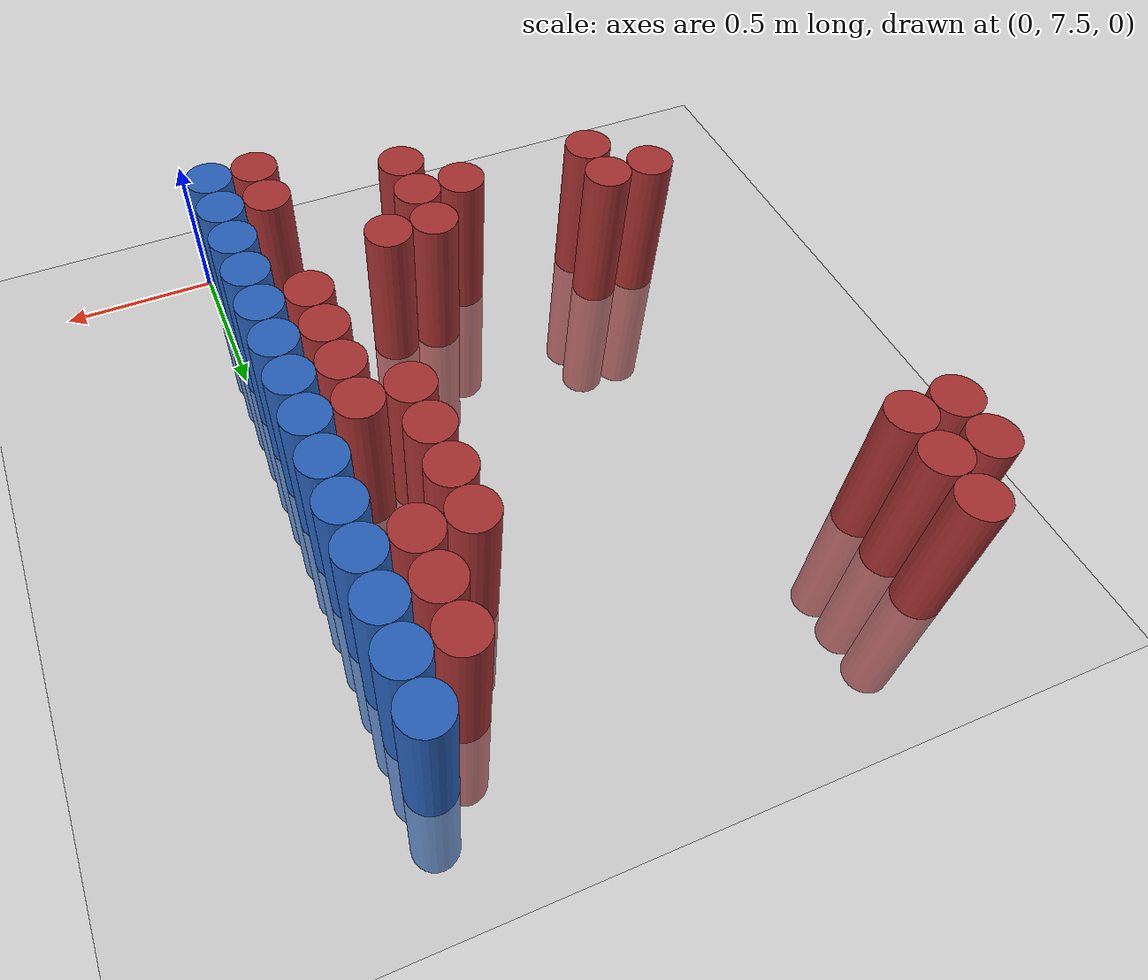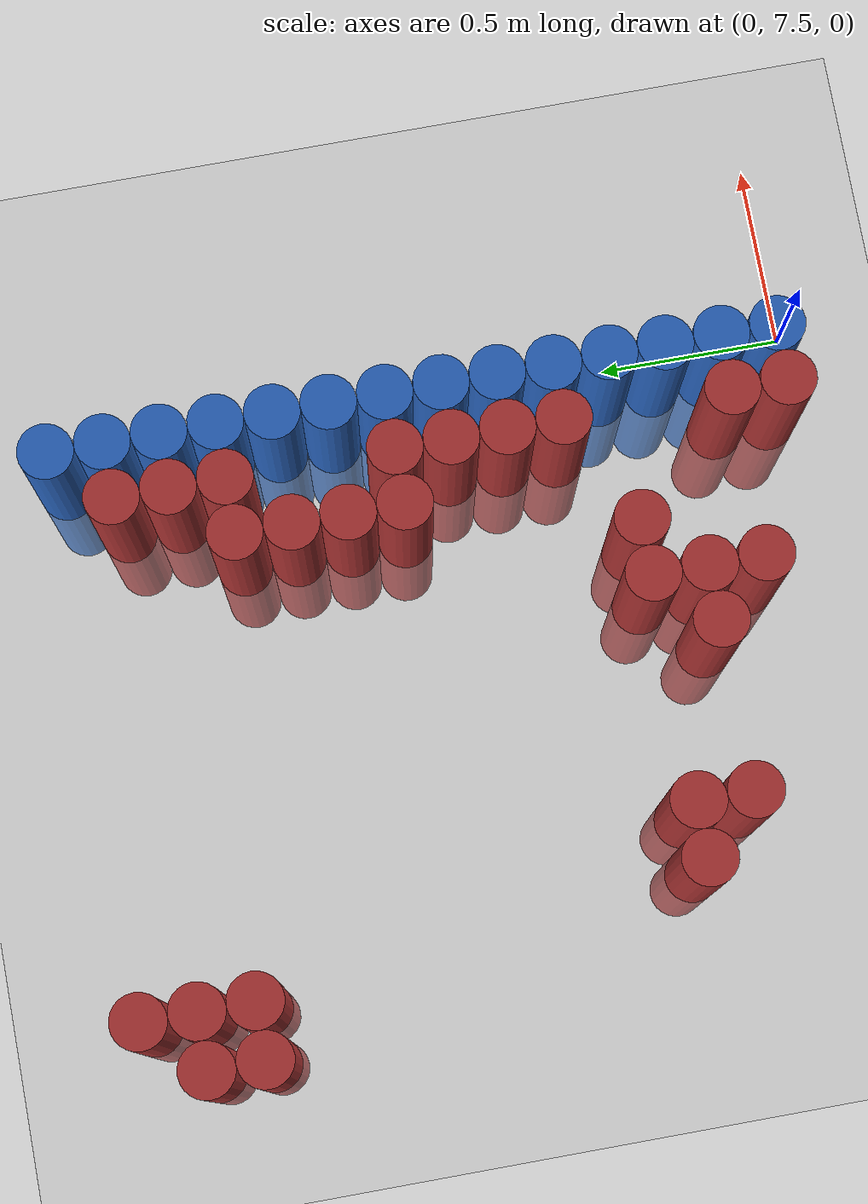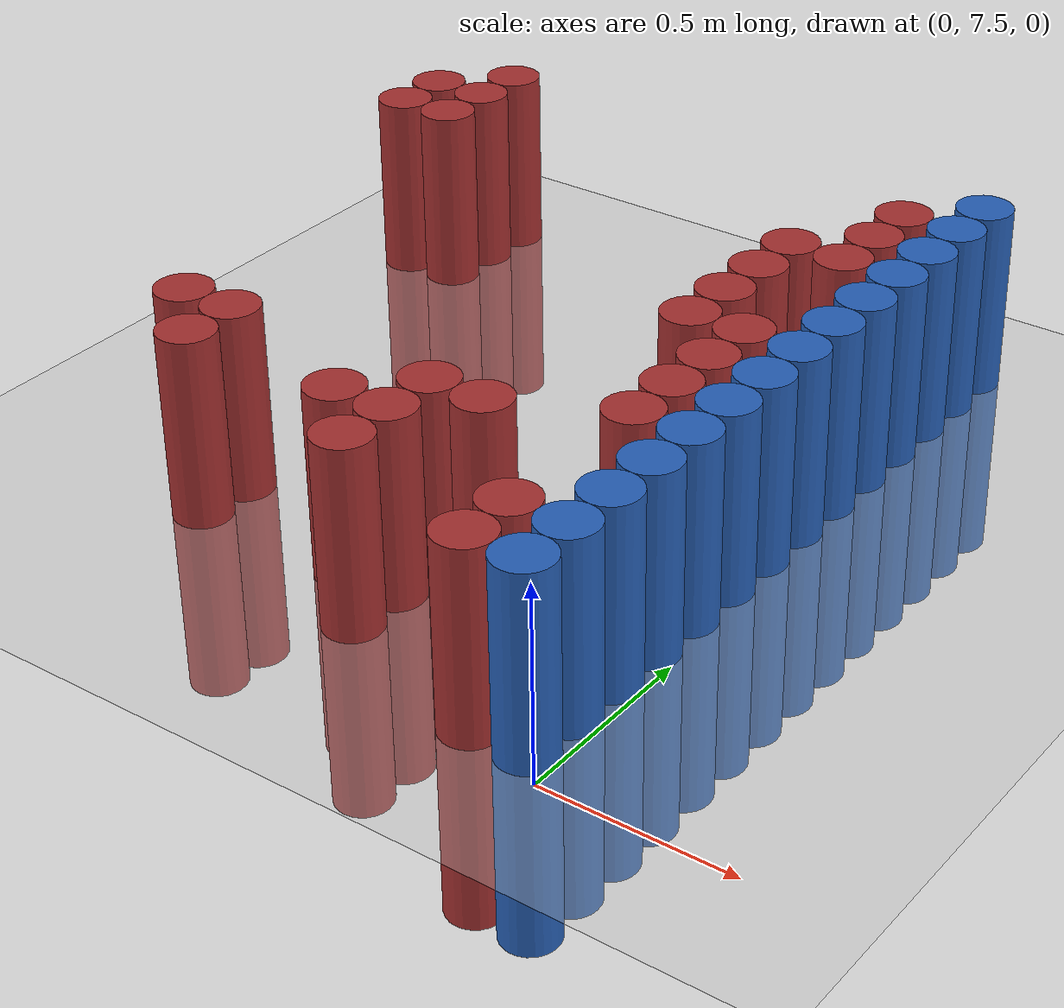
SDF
<sdf version="1.6">
 <world name="default">
  <model name="ground_plane">
   <static>1</static>
   <link name="link">
    <collision name="collision">
     <geometry><plane><normal>0 0 1</normal><size>100 100</size></plane></geometry>
     <surface><friction><ode><mu>100</mu><mu2>50</mu2></ode></friction></surface>
    </collision>
    <visual name="visual">
     <cast_shadows>0</cast_shadows>
     <geometry><plane><normal>0 0 1</normal><size>100 100</size></plane></geometry>
     <material>
      <script><uri>file://media/materials/scripts/gazebo.material</uri><name>Gazebo/Grey</name></script>
     </material>
    </visual>
   </link>
  </model>
  <model name="unit_cylinder_226">
   <static>1</static>
   <pose>-1.725000 9.225000 0.000000 0.000000 0.000000 0.000000</pose>
   <link name="link">
    <inertial>
     <mass>1</mass>
     <inertia><ixx>0.145833</ixx><ixy>0</ixy><ixz>0</ixz><iyy>0.145833</iyy><iyz>0</iyz><izz>0.125</izz></inertia>
    </inertial>
    <collision name="collision">
     <geometry><cylinder><radius>0.075000</radius><length>1</length></cylinder></geometry>
    </collision>
    <visual name="visual">
     <geometry><cylinder><radius>0.075000</radius><length>1</length></cylinder></geometry>
     <material>
      <ambient>0.648000 0.192000 0.192000 1</ambient>
      <diffuse>0.648000 0.192000 0.192000 1</diffuse>
     </material>
     <material>
      <script><name>Gazebo/Grey</name><uri>file://media/materials/scripts/gazebo.material</uri></script>
     </material>
    </visual>
    <sensor name="sensor_contact" type="contact"><contact><collision>collision</collision></contact></sensor>
   </link>
   <plugin filename="gz-sim-touchplugin-system" name="gz::sim::systems::TouchPlugin">
    <target>robot</target>
    <namespace>robot</namespace>
    <time>0.001</time>
    <enabled>true</enabled>
   </plugin>
  </model>
  <model name="unit_cylinder_227">
   <static>1</static>
   <pose>-1.725000 9.375000 0.000000 0.000000 0.000000 0.000000</pose>
   <link name="link">
    <inertial>
     <mass>1</mass>
     <inertia><ixx>0.145833</ixx><ixy>0</ixy><ixz>0</ixz><iyy>0.145833</iyy><iyz>0</iyz><izz>0.125</izz></inertia>
    </inertial>
    <collision name="collision">
     <geometry><cylinder><radius>0.075000</radius><length>1</length></cylinder></geometry>
    </collision>
    <visual name="visual">
     <geometry><cylinder><radius>0.075000</radius><length>1</length></cylinder></geometry>
     <material>
      <ambient>0.648000 0.192000 0.192000 1</ambient>
      <diffuse>0.648000 0.192000 0.192000 1</diffuse>
     </material>
     <material>
      <script><name>Gazebo/Grey</name><uri>file://media/materials/scripts/gazebo.material</uri></script>
     </material>
    </visual>
    <sensor name="sensor_contact" type="contact"><contact><collision>collision</collision></contact></sensor>
   </link>
   <plugin filename="gz-sim-touchplugin-system" name="gz::sim::systems::TouchPlugin">
    <target>robot</target>
    <namespace>robot</namespace>
    <time>0.001</time>
    <enabled>true</enabled>
   </plugin>
  </model>
  <model name="unit_cylinder_228">
   <static>1</static>
   <pose>-1.575000 9.225000 0.000000 0.000000 0.000000 0.000000</pose>
   <link name="link">
    <inertial>
     <mass>1</mass>
     <inertia><ixx>0.145833</ixx><ixy>0</ixy><ixz>0</ixz><iyy>0.145833</iyy><iyz>0</iyz><izz>0.125</izz></inertia>
    </inertial>
    <collision name="collision">
     <geometry><cylinder><radius>0.075000</radius><length>1</length></cylinder></geometry>
    </collision>
    <visual name="visual">
     <geometry><cylinder><radius>0.075000</radius><length>1</length></cylinder></geometry>
     <material>
      <ambient>0.648000 0.192000 0.192000 1</ambient>
      <diffuse>0.648000 0.192000 0.192000 1</diffuse>
     </material>
     <material>
      <script><name>Gazebo/Grey</name><uri>file://media/materials/scripts/gazebo.material</uri></script>
     </material>
    </visual>
    <sensor name="sensor_contact" type="contact"><contact><collision>collision</collision></contact></sensor>
   </link>
   <plugin filename="gz-sim-touchplugin-system" name="gz::sim::systems::TouchPlugin">
    <target>robot</target>
    <namespace>robot</namespace>
    <time>0.001</time>
    <enabled>true</enabled>
   </plugin>
  </model>
  <model name="unit_cylinder_229">
   <static>1</static>
   <pose>-1.575000 9.375000 0.000000 0.000000 0.000000 0.000000</pose>
   <link name="link">
    <inertial>
     <mass>1</mass>
     <inertia><ixx>0.145833</ixx><ixy>0</ixy><ixz>0</ixz><iyy>0.145833</iyy><iyz>0</iyz><izz>0.125</izz></inertia>
    </inertial>
    <collision name="collision">
     <geometry><cylinder><radius>0.075000</radius><length>1</length></cylinder></geometry>
    </collision>
    <visual name="visual">
     <geometry><cylinder><radius>0.075000</radius><length>1</length></cylinder></geometry>
     <material>
      <ambient>0.648000 0.192000 0.192000 1</ambient>
      <diffuse>0.648000 0.192000 0.192000 1</diffuse>
     </material>
     <material>
      <script><name>Gazebo/Grey</name><uri>file://media/materials/scripts/gazebo.material</uri></script>
     </material>
    </visual>
    <sensor name="sensor_contact" type="contact"><contact><collision>collision</collision></contact></sensor>
   </link>
   <plugin filename="gz-sim-touchplugin-system" name="gz::sim::systems::TouchPlugin">
    <target>robot</target>
    <namespace>robot</namespace>
    <time>0.001</time>
    <enabled>true</enabled>
   </plugin>
  </model>
  <model name="unit_cylinder_230">
   <static>1</static>
   <pose>-1.575000 9.525000 0.000000 0.000000 0.000000 0.000000</pose>
   <link name="link">
    <inertial>
     <mass>1</mass>
     <inertia><ixx>0.145833</ixx><ixy>0</ixy><ixz>0</ixz><iyy>0.145833</iyy><iyz>0</iyz><izz>0.125</izz></inertia>
    </inertial>
    <collision name="collision">
     <geometry><cylinder><radius>0.075000</radius><length>1</length></cylinder></geometry>
    </collision>
    <visual name="visual">
     <geometry><cylinder><radius>0.075000</radius><length>1</length></cylinder></geometry>
     <material>
      <ambient>0.648000 0.192000 0.192000 1</ambient>
      <diffuse>0.648000 0.192000 0.192000 1</diffuse>
     </material>
     <material>
      <script><name>Gazebo/Grey</name><uri>file://media/materials/scripts/gazebo.material</uri></script>
     </material>
    </visual>
    <sensor name="sensor_contact" type="contact"><contact><collision>collision</collision></contact></sensor>
   </link>
   <plugin filename="gz-sim-touchplugin-system" name="gz::sim::systems::TouchPlugin">
    <target>robot</target>
    <namespace>robot</namespace>
    <time>0.001</time>
    <enabled>true</enabled>
   </plugin>
  </model>
  <model name="unit_cylinder_231">
   <static>1</static>
   <pose>-1.425000 8.025000 0.000000 0.000000 0.000000 0.000000</pose>
   <link name="link">
    <inertial>
     <mass>1</mass>
     <inertia><ixx>0.145833</ixx><ixy>0</ixy><ixz>0</ixz><iyy>0.145833</iyy><iyz>0</iyz><izz>0.125</izz></inertia>
    </inertial>
    <collision name="collision">
     <geometry><cylinder><radius>0.075000</radius><length>1</length></cylinder></geometry>
    </collision>
    <visual name="visual">
     <geometry><cylinder><radius>0.075000</radius><length>1</length></cylinder></geometry>
     <material>
      <ambient>0.648000 0.192000 0.192000 1</ambient>
      <diffuse>0.648000 0.192000 0.192000 1</diffuse>
     </material>
     <material>
      <script><name>Gazebo/Grey</name><uri>file://media/materials/scripts/gazebo.material</uri></script>
     </material>
    </visual>
    <sensor name="sensor_contact" type="contact"><contact><collision>collision</collision></contact></sensor>
   </link>
   <plugin filename="gz-sim-touchplugin-system" name="gz::sim::systems::TouchPlugin">
    <target>robot</target>
    <namespace>robot</namespace>
    <time>0.001</time>
    <enabled>true</enabled>
   </plugin>
  </model>
  <model name="unit_cylinder_233">
   <static>1</static>
   <pose>-1.275000 7.875000 0.000000 0.000000 0.000000 0.000000</pose>
   <link name="link">
    <inertial>
     <mass>1</mass>
     <inertia><ixx>0.145833</ixx><ixy>0</ixy><ixz>0</ixz><iyy>0.145833</iyy><iyz>0</iyz><izz>0.125</izz></inertia>
    </inertial>
    <collision name="collision">
     <geometry><cylinder><radius>0.075000</radius><length>1</length></cylinder></geometry>
    </collision>
    <visual name="visual">
     <geometry><cylinder><radius>0.075000</radius><length>1</length></cylinder></geometry>
     <material>
      <ambient>0.648000 0.192000 0.192000 1</ambient>
      <diffuse>0.648000 0.192000 0.192000 1</diffuse>
     </material>
     <material>
      <script><name>Gazebo/Grey</name><uri>file://media/materials/scripts/gazebo.material</uri></script>
     </material>
    </visual>
    <sensor name="sensor_contact" type="contact"><contact><collision>collision</collision></contact></sensor>
   </link>
   <plugin filename="gz-sim-touchplugin-system" name="gz::sim::systems::TouchPlugin">
    <target>robot</target>
    <namespace>robot</namespace>
    <time>0.001</time>
    <enabled>true</enabled>
   </plugin>
  </model>
  <model name="unit_cylinder_234">
   <static>1</static>
   <pose>-1.275000 8.025000 0.000000 0.000000 0.000000 0.000000</pose>
   <link name="link">
    <inertial>
     <mass>1</mass>
     <inertia><ixx>0.145833</ixx><ixy>0</ixy><ixz>0</ixz><iyy>0.145833</iyy><iyz>0</iyz><izz>0.125</izz></inertia>
    </inertial>
    <collision name="collision">
     <geometry><cylinder><radius>0.075000</radius><length>1</length></cylinder></geometry>
    </collision>
    <visual name="visual">
     <geometry><cylinder><radius>0.075000</radius><length>1</length></cylinder></geometry>
     <material>
      <ambient>0.648000 0.192000 0.192000 1</ambient>
      <diffuse>0.648000 0.192000 0.192000 1</diffuse>
     </material>
     <material>
      <script><name>Gazebo/Grey</name><uri>file://media/materials/scripts/gazebo.material</uri></script>
     </material>
    </visual>
    <sensor name="sensor_contact" type="contact"><contact><collision>collision</collision></contact></sensor>
   </link>
   <plugin filename="gz-sim-touchplugin-system" name="gz::sim::systems::TouchPlugin">
    <target>robot</target>
    <namespace>robot</namespace>
    <time>0.001</time>
    <enabled>true</enabled>
   </plugin>
  </model>
  <model name="unit_cylinder_244">
   <static>1</static>
   <pose>-0.825000 7.875000 0.000000 0.000000 0.000000 0.000000</pose>
   <link name="link">
    <inertial>
     <mass>1</mass>
     <inertia><ixx>0.145833</ixx><ixy>0</ixy><ixz>0</ixz><iyy>0.145833</iyy><iyz>0</iyz><izz>0.125</izz></inertia>
    </inertial>
    <collision name="collision">
     <geometry><cylinder><radius>0.075000</radius><length>1</length></cylinder></geometry>
    </collision>
    <visual name="visual">
     <geometry><cylinder><radius>0.075000</radius><length>1</length></cylinder></geometry>
     <material>
      <ambient>0.648000 0.192000 0.192000 1</ambient>
      <diffuse>0.648000 0.192000 0.192000 1</diffuse>
     </material>
     <material>
      <script><name>Gazebo/Grey</name><uri>file://media/materials/scripts/gazebo.material</uri></script>
     </material>
    </visual>
    <sensor name="sensor_contact" type="contact"><contact><collision>collision</collision></contact></sensor>
   </link>
   <plugin filename="gz-sim-touchplugin-system" name="gz::sim::systems::TouchPlugin">
    <target>robot</target>
    <namespace>robot</namespace>
    <time>0.001</time>
    <enabled>true</enabled>
   </plugin>
  </model>
  <model name="unit_cylinder_248">
   <static>1</static>
   <pose>-0.675000 7.725000 0.000000 0.000000 0.000000 0.000000</pose>
   <link name="link">
    <inertial>
     <mass>1</mass>
     <inertia><ixx>0.145833</ixx><ixy>0</ixy><ixz>0</ixz><iyy>0.145833</iyy><iyz>0</iyz><izz>0.125</izz></inertia>
    </inertial>
    <collision name="collision">
     <geometry><cylinder><radius>0.075000</radius><length>1</length></cylinder></geometry>
    </collision>
    <visual name="visual">
     <geometry><cylinder><radius>0.075000</radius><length>1</length></cylinder></geometry>
     <material>
      <ambient>0.648000 0.192000 0.192000 1</ambient>
      <diffuse>0.648000 0.192000 0.192000 1</diffuse>
     </material>
     <material>
      <script><name>Gazebo/Grey</name><uri>file://media/materials/scripts/gazebo.material</uri></script>
     </material>
    </visual>
    <sensor name="sensor_contact" type="contact"><contact><collision>collision</collision></contact></sensor>
   </link>
   <plugin filename="gz-sim-touchplugin-system" name="gz::sim::systems::TouchPlugin">
    <target>robot</target>
    <namespace>robot</namespace>
    <time>0.001</time>
    <enabled>true</enabled>
   </plugin>
  </model>
  <model name="unit_cylinder_249">
   <static>1</static>
   <pose>-0.675000 7.875000 0.000000 0.000000 0.000000 0.000000</pose>
   <link name="link">
    <inertial>
     <mass>1</mass>
     <inertia><ixx>0.145833</ixx><ixy>0</ixy><ixz>0</ixz><iyy>0.145833</iyy><iyz>0</iyz><izz>0.125</izz></inertia>
    </inertial>
    <collision name="collision">
     <geometry><cylinder><radius>0.075000</radius><length>1</length></cylinder></geometry>
    </collision>
    <visual name="visual">
     <geometry><cylinder><radius>0.075000</radius><length>1</length></cylinder></geometry>
     <material>
      <ambient>0.648000 0.192000 0.192000 1</ambient>
      <diffuse>0.648000 0.192000 0.192000 1</diffuse>
     </material>
     <material>
      <script><name>Gazebo/Grey</name><uri>file://media/materials/scripts/gazebo.material</uri></script>
     </material>
    </visual>
    <sensor name="sensor_contact" type="contact"><contact><collision>collision</collision></contact></sensor>
   </link>
   <plugin filename="gz-sim-touchplugin-system" name="gz::sim::systems::TouchPlugin">
    <target>robot</target>
    <namespace>robot</namespace>
    <time>0.001</time>
    <enabled>true</enabled>
   </plugin>
  </model>
  <model name="unit_cylinder_250">
   <static>1</static>
   <pose>-0.675000 8.025000 0.000000 0.000000 0.000000 0.000000</pose>
   <link name="link">
    <inertial>
     <mass>1</mass>
     <inertia><ixx>0.145833</ixx><ixy>0</ixy><ixz>0</ixz><iyy>0.145833</iyy><iyz>0</iyz><izz>0.125</izz></inertia>
    </inertial>
    <collision name="collision">
     <geometry><cylinder><radius>0.075000</radius><length>1</length></cylinder></geometry>
    </collision>
    <visual name="visual">
     <geometry><cylinder><radius>0.075000</radius><length>1</length></cylinder></geometry>
     <material>
      <ambient>0.648000 0.192000 0.192000 1</ambient>
      <diffuse>0.648000 0.192000 0.192000 1</diffuse>
     </material>
     <material>
      <script><name>Gazebo/Grey</name><uri>file://media/materials/scripts/gazebo.material</uri></script>
     </material>
    </visual>
    <sensor name="sensor_contact" type="contact"><contact><collision>collision</collision></contact></sensor>
   </link>
   <plugin filename="gz-sim-touchplugin-system" name="gz::sim::systems::TouchPlugin">
    <target>robot</target>
    <namespace>robot</namespace>
    <time>0.001</time>
    <enabled>true</enabled>
   </plugin>
  </model>
  <model name="unit_cylinder_263">
   <static>1</static>
   <pose>-0.525000 8.025000 0.000000 0.000000 0.000000 0.000000</pose>
   <link name="link">
    <inertial>
     <mass>1</mass>
     <inertia><ixx>0.145833</ixx><ixy>0</ixy><ixz>0</ixz><iyy>0.145833</iyy><iyz>0</iyz><izz>0.125</izz></inertia>
    </inertial>
    <collision name="collision">
     <geometry><cylinder><radius>0.075000</radius><length>1</length></cylinder></geometry>
    </collision>
    <visual name="visual">
     <geometry><cylinder><radius>0.075000</radius><length>1</length></cylinder></geometry>
     <material>
      <ambient>0.648000 0.192000 0.192000 1</ambient>
      <diffuse>0.648000 0.192000 0.192000 1</diffuse>
     </material>
     <material>
      <script><name>Gazebo/Grey</name><uri>file://media/materials/scripts/gazebo.material</uri></script>
     </material>
    </visual>
    <sensor name="sensor_contact" type="contact"><contact><collision>collision</collision></contact></sensor>
   </link>
   <plugin filename="gz-sim-touchplugin-system" name="gz::sim::systems::TouchPlugin">
    <target>robot</target>
    <namespace>robot</namespace>
    <time>0.001</time>
    <enabled>true</enabled>
   </plugin>
  </model>
  <model name="unit_cylinder_273">
   <static>1</static>
   <pose>-0.375000 8.625000 0.000000 0.000000 0.000000 0.000000</pose>
   <link name="link">
    <inertial>
     <mass>1</mass>
     <inertia><ixx>0.145833</ixx><ixy>0</ixy><ixz>0</ixz><iyy>0.145833</iyy><iyz>0</iyz><izz>0.125</izz></inertia>
    </inertial>
    <collision name="collision">
     <geometry><cylinder><radius>0.075000</radius><length>1</length></cylinder></geometry>
    </collision>
    <visual name="visual">
     <geometry><cylinder><radius>0.075000</radius><length>1</length></cylinder></geometry>
     <material>
      <ambient>0.648000 0.192000 0.192000 1</ambient>
      <diffuse>0.648000 0.192000 0.192000 1</diffuse>
     </material>
     <material>
      <script><name>Gazebo/Grey</name><uri>file://media/materials/scripts/gazebo.material</uri></script>
     </material>
    </visual>
    <sensor name="sensor_contact" type="contact"><contact><collision>collision</collision></contact></sensor>
   </link>
   <plugin filename="gz-sim-touchplugin-system" name="gz::sim::systems::TouchPlugin">
    <target>robot</target>
    <namespace>robot</namespace>
    <time>0.001</time>
    <enabled>true</enabled>
   </plugin>
  </model>
  <model name="unit_cylinder_274">
   <static>1</static>
   <pose>-0.375000 8.775000 0.000000 0.000000 0.000000 0.000000</pose>
   <link name="link">
    <inertial>
     <mass>1</mass>
     <inertia><ixx>0.145833</ixx><ixy>0</ixy><ixz>0</ixz><iyy>0.145833</iyy><iyz>0</iyz><izz>0.125</izz></inertia>
    </inertial>
    <collision name="collision">
     <geometry><cylinder><radius>0.075000</radius><length>1</length></cylinder></geometry>
    </collision>
    <visual name="visual">
     <geometry><cylinder><radius>0.075000</radius><length>1</length></cylinder></geometry>
     <material>
      <ambient>0.648000 0.192000 0.192000 1</ambient>
      <diffuse>0.648000 0.192000 0.192000 1</diffuse>
     </material>
     <material>
      <script><name>Gazebo/Grey</name><uri>file://media/materials/scripts/gazebo.material</uri></script>
     </material>
    </visual>
    <sensor name="sensor_contact" type="contact"><contact><collision>collision</collision></contact></sensor>
   </link>
   <plugin filename="gz-sim-touchplugin-system" name="gz::sim::systems::TouchPlugin">
    <target>robot</target>
    <namespace>robot</namespace>
    <time>0.001</time>
    <enabled>true</enabled>
   </plugin>
  </model>
  <model name="unit_cylinder_275">
   <static>1</static>
   <pose>-0.375000 8.925000 0.000000 0.000000 0.000000 0.000000</pose>
   <link name="link">
    <inertial>
     <mass>1</mass>
     <inertia><ixx>0.145833</ixx><ixy>0</ixy><ixz>0</ixz><iyy>0.145833</iyy><iyz>0</iyz><izz>0.125</izz></inertia>
    </inertial>
    <collision name="collision">
     <geometry><cylinder><radius>0.075000</radius><length>1</length></cylinder></geometry>
    </collision>
    <visual name="visual">
     <geometry><cylinder><radius>0.075000</radius><length>1</length></cylinder></geometry>
     <material>
      <ambient>0.648000 0.192000 0.192000 1</ambient>
      <diffuse>0.648000 0.192000 0.192000 1</diffuse>
     </material>
     <material>
      <script><name>Gazebo/Grey</name><uri>file://media/materials/scripts/gazebo.material</uri></script>
     </material>
    </visual>
    <sensor name="sensor_contact" type="contact"><contact><collision>collision</collision></contact></sensor>
   </link>
   <plugin filename="gz-sim-touchplugin-system" name="gz::sim::systems::TouchPlugin">
    <target>robot</target>
    <namespace>robot</namespace>
    <time>0.001</time>
    <enabled>true</enabled>
   </plugin>
  </model>
  <model name="unit_cylinder_276">
   <static>1</static>
   <pose>-0.375000 9.075000 0.000000 0.000000 0.000000 0.000000</pose>
   <link name="link">
    <inertial>
     <mass>1</mass>
     <inertia><ixx>0.145833</ixx><ixy>0</ixy><ixz>0</ixz><iyy>0.145833</iyy><iyz>0</iyz><izz>0.125</izz></inertia>
    </inertial>
    <collision name="collision">
     <geometry><cylinder><radius>0.075000</radius><length>1</length></cylinder></geometry>
    </collision>
    <visual name="visual">
     <geometry><cylinder><radius>0.075000</radius><length>1</length></cylinder></geometry>
     <material>
      <ambient>0.648000 0.192000 0.192000 1</ambient>
      <diffuse>0.648000 0.192000 0.192000 1</diffuse>
     </material>
     <material>
      <script><name>Gazebo/Grey</name><uri>file://media/materials/scripts/gazebo.material</uri></script>
     </material>
    </visual>
    <sensor name="sensor_contact" type="contact"><contact><collision>collision</collision></contact></sensor>
   </link>
   <plugin filename="gz-sim-touchplugin-system" name="gz::sim::systems::TouchPlugin">
    <target>robot</target>
    <namespace>robot</namespace>
    <time>0.001</time>
    <enabled>true</enabled>
   </plugin>
  </model>
  <model name="unit_cylinder_278">
   <static>1</static>
   <pose>-0.225000 7.575000 0.000000 0.000000 0.000000 0.000000</pose>
   <link name="link">
    <inertial>
     <mass>1</mass>
     <inertia><ixx>0.145833</ixx><ixy>0</ixy><ixz>0</ixz><iyy>0.145833</iyy><iyz>0</iyz><izz>0.125</izz></inertia>
    </inertial>
    <collision name="collision">
     <geometry><cylinder><radius>0.075000</radius><length>1</length></cylinder></geometry>
    </collision>
    <visual name="visual">
     <geometry><cylinder><radius>0.075000</radius><length>1</length></cylinder></geometry>
     <material>
      <ambient>0.648000 0.192000 0.192000 1</ambient>
      <diffuse>0.648000 0.192000 0.192000 1</diffuse>
     </material>
     <material>
      <script><name>Gazebo/Grey</name><uri>file://media/materials/scripts/gazebo.material</uri></script>
     </material>
    </visual>
    <sensor name="sensor_contact" type="contact"><contact><collision>collision</collision></contact></sensor>
   </link>
   <plugin filename="gz-sim-touchplugin-system" name="gz::sim::systems::TouchPlugin">
    <target>robot</target>
    <namespace>robot</namespace>
    <time>0.001</time>
    <enabled>true</enabled>
   </plugin>
  </model>
  <model name="unit_cylinder_279">
   <static>1</static>
   <pose>-0.225000 7.725000 0.000000 0.000000 0.000000 0.000000</pose>
   <link name="link">
    <inertial>
     <mass>1</mass>
     <inertia><ixx>0.145833</ixx><ixy>0</ixy><ixz>0</ixz><iyy>0.145833</iyy><iyz>0</iyz><izz>0.125</izz></inertia>
    </inertial>
    <collision name="collision">
     <geometry><cylinder><radius>0.075000</radius><length>1</length></cylinder></geometry>
    </collision>
    <visual name="visual">
     <geometry><cylinder><radius>0.075000</radius><length>1</length></cylinder></geometry>
     <material>
      <ambient>0.648000 0.192000 0.192000 1</ambient>
      <diffuse>0.648000 0.192000 0.192000 1</diffuse>
     </material>
     <material>
      <script><name>Gazebo/Grey</name><uri>file://media/materials/scripts/gazebo.material</uri></script>
     </material>
    </visual>
    <sensor name="sensor_contact" type="contact"><contact><collision>collision</collision></contact></sensor>
   </link>
   <plugin filename="gz-sim-touchplugin-system" name="gz::sim::systems::TouchPlugin">
    <target>robot</target>
    <namespace>robot</namespace>
    <time>0.001</time>
    <enabled>true</enabled>
   </plugin>
  </model>
  <model name="unit_cylinder_280">
   <static>1</static>
   <pose>-0.225000 8.175000 0.000000 0.000000 0.000000 0.000000</pose>
   <link name="link">
    <inertial>
     <mass>1</mass>
     <inertia><ixx>0.145833</ixx><ixy>0</ixy><ixz>0</ixz><iyy>0.145833</iyy><iyz>0</iyz><izz>0.125</izz></inertia>
    </inertial>
    <collision name="collision">
     <geometry><cylinder><radius>0.075000</radius><length>1</length></cylinder></geometry>
    </collision>
    <visual name="visual">
     <geometry><cylinder><radius>0.075000</radius><length>1</length></cylinder></geometry>
     <material>
      <ambient>0.648000 0.192000 0.192000 1</ambient>
      <diffuse>0.648000 0.192000 0.192000 1</diffuse>
     </material>
     <material>
      <script><name>Gazebo/Grey</name><uri>file://media/materials/scripts/gazebo.material</uri></script>
     </material>
    </visual>
    <sensor name="sensor_contact" type="contact"><contact><collision>collision</collision></contact></sensor>
   </link>
   <plugin filename="gz-sim-touchplugin-system" name="gz::sim::systems::TouchPlugin">
    <target>robot</target>
    <namespace>robot</namespace>
    <time>0.001</time>
    <enabled>true</enabled>
   </plugin>
  </model>
  <model name="unit_cylinder_281">
   <static>1</static>
   <pose>-0.225000 8.325000 0.000000 0.000000 0.000000 0.000000</pose>
   <link name="link">
    <inertial>
     <mass>1</mass>
     <inertia><ixx>0.145833</ixx><ixy>0</ixy><ixz>0</ixz><iyy>0.145833</iyy><iyz>0</iyz><izz>0.125</izz></inertia>
    </inertial>
    <collision name="collision">
     <geometry><cylinder><radius>0.075000</radius><length>1</length></cylinder></geometry>
    </collision>
    <visual name="visual">
     <geometry><cylinder><radius>0.075000</radius><length>1</length></cylinder></geometry>
     <material>
      <ambient>0.648000 0.192000 0.192000 1</ambient>
      <diffuse>0.648000 0.192000 0.192000 1</diffuse>
     </material>
     <material>
      <script><name>Gazebo/Grey</name><uri>file://media/materials/scripts/gazebo.material</uri></script>
     </material>
    </visual>
    <sensor name="sensor_contact" type="contact"><contact><collision>collision</collision></contact></sensor>
   </link>
   <plugin filename="gz-sim-touchplugin-system" name="gz::sim::systems::TouchPlugin">
    <target>robot</target>
    <namespace>robot</namespace>
    <time>0.001</time>
    <enabled>true</enabled>
   </plugin>
  </model>
  <model name="unit_cylinder_282">
   <static>1</static>
   <pose>-0.225000 8.475000 0.000000 0.000000 0.000000 0.000000</pose>
   <link name="link">
    <inertial>
     <mass>1</mass>
     <inertia><ixx>0.145833</ixx><ixy>0</ixy><ixz>0</ixz><iyy>0.145833</iyy><iyz>0</iyz><izz>0.125</izz></inertia>
    </inertial>
    <collision name="collision">
     <geometry><cylinder><radius>0.075000</radius><length>1</length></cylinder></geometry>
    </collision>
    <visual name="visual">
     <geometry><cylinder><radius>0.075000</radius><length>1</length></cylinder></geometry>
     <material>
      <ambient>0.648000 0.192000 0.192000 1</ambient>
      <diffuse>0.648000 0.192000 0.192000 1</diffuse>
     </material>
     <material>
      <script><name>Gazebo/Grey</name><uri>file://media/materials/scripts/gazebo.material</uri></script>
     </material>
    </visual>
    <sensor name="sensor_contact" type="contact"><contact><collision>collision</collision></contact></sensor>
   </link>
   <plugin filename="gz-sim-touchplugin-system" name="gz::sim::systems::TouchPlugin">
    <target>robot</target>
    <namespace>robot</namespace>
    <time>0.001</time>
    <enabled>true</enabled>
   </plugin>
  </model>
  <model name="unit_cylinder_283">
   <static>1</static>
   <pose>-0.225000 8.625000 0.000000 0.000000 0.000000 0.000000</pose>
   <link name="link">
    <inertial>
     <mass>1</mass>
     <inertia><ixx>0.145833</ixx><ixy>0</ixy><ixz>0</ixz><iyy>0.145833</iyy><iyz>0</iyz><izz>0.125</izz></inertia>
    </inertial>
    <collision name="collision">
     <geometry><cylinder><radius>0.075000</radius><length>1</length></cylinder></geometry>
    </collision>
    <visual name="visual">
     <geometry><cylinder><radius>0.075000</radius><length>1</length></cylinder></geometry>
     <material>
      <ambient>0.648000 0.192000 0.192000 1</ambient>
      <diffuse>0.648000 0.192000 0.192000 1</diffuse>
     </material>
     <material>
      <script><name>Gazebo/Grey</name><uri>file://media/materials/scripts/gazebo.material</uri></script>
     </material>
    </visual>
    <sensor name="sensor_contact" type="contact"><contact><collision>collision</collision></contact></sensor>
   </link>
   <plugin filename="gz-sim-touchplugin-system" name="gz::sim::systems::TouchPlugin">
    <target>robot</target>
    <namespace>robot</namespace>
    <time>0.001</time>
    <enabled>true</enabled>
   </plugin>
  </model>
  <model name="unit_cylinder_284">
   <static>1</static>
   <pose>-0.225000 9.075000 0.000000 0.000000 0.000000 0.000000</pose>
   <link name="link">
    <inertial>
     <mass>1</mass>
     <inertia><ixx>0.145833</ixx><ixy>0</ixy><ixz>0</ixz><iyy>0.145833</iyy><iyz>0</iyz><izz>0.125</izz></inertia>
    </inertial>
    <collision name="collision">
     <geometry><cylinder><radius>0.075000</radius><length>1</length></cylinder></geometry>
    </collision>
    <visual name="visual">
     <geometry><cylinder><radius>0.075000</radius><length>1</length></cylinder></geometry>
     <material>
      <ambient>0.648000 0.192000 0.192000 1</ambient>
      <diffuse>0.648000 0.192000 0.192000 1</diffuse>
     </material>
     <material>
      <script><name>Gazebo/Grey</name><uri>file://media/materials/scripts/gazebo.material</uri></script>
     </material>
    </visual>
    <sensor name="sensor_contact" type="contact"><contact><collision>collision</collision></contact></sensor>
   </link>
   <plugin filename="gz-sim-touchplugin-system" name="gz::sim::systems::TouchPlugin">
    <target>robot</target>
    <namespace>robot</namespace>
    <time>0.001</time>
    <enabled>true</enabled>
   </plugin>
  </model>
  <model name="unit_cylinder_285">
   <static>1</static>
   <pose>-0.225000 9.225000 0.000000 0.000000 0.000000 0.000000</pose>
   <link name="link">
    <inertial>
     <mass>1</mass>
     <inertia><ixx>0.145833</ixx><ixy>0</ixy><ixz>0</ixz><iyy>0.145833</iyy><iyz>0</iyz><izz>0.125</izz></inertia>
    </inertial>
    <collision name="collision">
     <geometry><cylinder><radius>0.075000</radius><length>1</length></cylinder></geometry>
    </collision>
    <visual name="visual">
     <geometry><cylinder><radius>0.075000</radius><length>1</length></cylinder></geometry>
     <material>
      <ambient>0.648000 0.192000 0.192000 1</ambient>
      <diffuse>0.648000 0.192000 0.192000 1</diffuse>
     </material>
     <material>
      <script><name>Gazebo/Grey</name><uri>file://media/materials/scripts/gazebo.material</uri></script>
     </material>
    </visual>
    <sensor name="sensor_contact" type="contact"><contact><collision>collision</collision></contact></sensor>
   </link>
   <plugin filename="gz-sim-touchplugin-system" name="gz::sim::systems::TouchPlugin">
    <target>robot</target>
    <namespace>robot</namespace>
    <time>0.001</time>
    <enabled>true</enabled>
   </plugin>
  </model>
  <model name="unit_cylinder_286">
   <static>1</static>
   <pose>-0.225000 9.375000 0.000000 0.000000 0.000000 0.000000</pose>
   <link name="link">
    <inertial>
     <mass>1</mass>
     <inertia><ixx>0.145833</ixx><ixy>0</ixy><ixz>0</ixz><iyy>0.145833</iyy><iyz>0</iyz><izz>0.125</izz></inertia>
    </inertial>
    <collision name="collision">
     <geometry><cylinder><radius>0.075000</radius><length>1</length></cylinder></geometry>
    </collision>
    <visual name="visual">
     <geometry><cylinder><radius>0.075000</radius><length>1</length></cylinder></geometry>
     <material>
      <ambient>0.648000 0.192000 0.192000 1</ambient>
      <diffuse>0.648000 0.192000 0.192000 1</diffuse>
     </material>
     <material>
      <script><name>Gazebo/Grey</name><uri>file://media/materials/scripts/gazebo.material</uri></script>
     </material>
    </visual>
    <sensor name="sensor_contact" type="contact"><contact><collision>collision</collision></contact></sensor>
   </link>
   <plugin filename="gz-sim-touchplugin-system" name="gz::sim::systems::TouchPlugin">
    <target>robot</target>
    <namespace>robot</namespace>
    <time>0.001</time>
    <enabled>true</enabled>
   </plugin>
  </model>
  <model name="unit_cylinder_303">
   <static>1</static>
   <pose>-0.075000 7.575000 0.000000 0.000000 0.000000 0.000000</pose>
   <link name="link">
    <inertial>
     <mass>1</mass>
     <inertia><ixx>0.145833</ixx><ixy>0</ixy><ixz>0</ixz><iyy>0.145833</iyy><iyz>0</iyz><izz>0.125</izz></inertia>
    </inertial>
    <collision name="collision">
     <geometry><cylinder><radius>0.075000</radius><length>1</length></cylinder></geometry>
    </collision>
    <visual name="visual">
     <geometry><cylinder><radius>0.075000</radius><length>1</length></cylinder></geometry>
     <material>
      <ambient>0.152000 0.379000 0.720000 1</ambient>
      <diffuse>0.152000 0.379000 0.720000 1</diffuse>
     </material>
     <material>
      <script><name>Gazebo/Grey</name><uri>file://media/materials/scripts/gazebo.material</uri></script>
     </material>
    </visual>
    <sensor name="sensor_contact" type="contact"><contact><collision>collision</collision></contact></sensor>
   </link>
   <plugin filename="gz-sim-touchplugin-system" name="gz::sim::systems::TouchPlugin">
    <target>robot</target>
    <namespace>robot</namespace>
    <time>0.001</time>
    <enabled>true</enabled>
   </plugin>
  </model>
  <model name="unit_cylinder_304">
   <static>1</static>
   <pose>-0.075000 7.725000 0.000000 0.000000 0.000000 0.000000</pose>
   <link name="link">
    <inertial>
     <mass>1</mass>
     <inertia><ixx>0.145833</ixx><ixy>0</ixy><ixz>0</ixz><iyy>0.145833</iyy><iyz>0</iyz><izz>0.125</izz></inertia>
    </inertial>
    <collision name="collision">
     <geometry><cylinder><radius>0.075000</radius><length>1</length></cylinder></geometry>
    </collision>
    <visual name="visual">
     <geometry><cylinder><radius>0.075000</radius><length>1</length></cylinder></geometry>
     <material>
      <ambient>0.152000 0.379000 0.720000 1</ambient>
      <diffuse>0.152000 0.379000 0.720000 1</diffuse>
     </material>
     <material>
      <script><name>Gazebo/Grey</name><uri>file://media/materials/scripts/gazebo.material</uri></script>
     </material>
    </visual>
    <sensor name="sensor_contact" type="contact"><contact><collision>collision</collision></contact></sensor>
   </link>
   <plugin filename="gz-sim-touchplugin-system" name="gz::sim::systems::TouchPlugin">
    <target>robot</target>
    <namespace>robot</namespace>
    <time>0.001</time>
    <enabled>true</enabled>
   </plugin>
  </model>
  <model name="unit_cylinder_305">
   <static>1</static>
   <pose>-0.075000 7.875000 0.000000 0.000000 0.000000 0.000000</pose>
   <link name="link">
    <inertial>
     <mass>1</mass>
     <inertia><ixx>0.145833</ixx><ixy>0</ixy><ixz>0</ixz><iyy>0.145833</iyy><iyz>0</iyz><izz>0.125</izz></inertia>
    </inertial>
    <collision name="collision">
     <geometry><cylinder><radius>0.075000</radius><length>1</length></cylinder></geometry>
    </collision>
    <visual name="visual">
     <geometry><cylinder><radius>0.075000</radius><length>1</length></cylinder></geometry>
     <material>
      <ambient>0.152000 0.379000 0.720000 1</ambient>
      <diffuse>0.152000 0.379000 0.720000 1</diffuse>
     </material>
     <material>
      <script><name>Gazebo/Grey</name><uri>file://media/materials/scripts/gazebo.material</uri></script>
     </material>
    </visual>
    <sensor name="sensor_contact" type="contact"><contact><collision>collision</collision></contact></sensor>
   </link>
   <plugin filename="gz-sim-touchplugin-system" name="gz::sim::systems::TouchPlugin">
    <target>robot</target>
    <namespace>robot</namespace>
    <time>0.001</time>
    <enabled>true</enabled>
   </plugin>
  </model>
  <model name="unit_cylinder_306">
   <static>1</static>
   <pose>-0.075000 8.025000 0.000000 0.000000 0.000000 0.000000</pose>
   <link name="link">
    <inertial>
     <mass>1</mass>
     <inertia><ixx>0.145833</ixx><ixy>0</ixy><ixz>0</ixz><iyy>0.145833</iyy><iyz>0</iyz><izz>0.125</izz></inertia>
    </inertial>
    <collision name="collision">
     <geometry><cylinder><radius>0.075000</radius><length>1</length></cylinder></geometry>
    </collision>
    <visual name="visual">
     <geometry><cylinder><radius>0.075000</radius><length>1</length></cylinder></geometry>
     <material>
      <ambient>0.152000 0.379000 0.720000 1</ambient>
      <diffuse>0.152000 0.379000 0.720000 1</diffuse>
     </material>
     <material>
      <script><name>Gazebo/Grey</name><uri>file://media/materials/scripts/gazebo.material</uri></script>
     </material>
    </visual>
    <sensor name="sensor_contact" type="contact"><contact><collision>collision</collision></contact></sensor>
   </link>
   <plugin filename="gz-sim-touchplugin-system" name="gz::sim::systems::TouchPlugin">
    <target>robot</target>
    <namespace>robot</namespace>
    <time>0.001</time>
    <enabled>true</enabled>
   </plugin>
  </model>
  <model name="unit_cylinder_307">
   <static>1</static>
   <pose>-0.075000 8.175000 0.000000 0.000000 0.000000 0.000000</pose>
   <link name="link">
    <inertial>
     <mass>1</mass>
     <inertia><ixx>0.145833</ixx><ixy>0</ixy><ixz>0</ixz><iyy>0.145833</iyy><iyz>0</iyz><izz>0.125</izz></inertia>
    </inertial>
    <collision name="collision">
     <geometry><cylinder><radius>0.075000</radius><length>1</length></cylinder></geometry>
    </collision>
    <visual name="visual">
     <geometry><cylinder><radius>0.075000</radius><length>1</length></cylinder></geometry>
     <material>
      <ambient>0.152000 0.379000 0.720000 1</ambient>
      <diffuse>0.152000 0.379000 0.720000 1</diffuse>
     </material>
     <material>
      <script><name>Gazebo/Grey</name><uri>file://media/materials/scripts/gazebo.material</uri></script>
     </material>
    </visual>
    <sensor name="sensor_contact" type="contact"><contact><collision>collision</collision></contact></sensor>
   </link>
   <plugin filename="gz-sim-touchplugin-system" name="gz::sim::systems::TouchPlugin">
    <target>robot</target>
    <namespace>robot</namespace>
    <time>0.001</time>
    <enabled>true</enabled>
   </plugin>
  </model>
  <model name="unit_cylinder_308">
   <static>1</static>
   <pose>-0.075000 8.325000 0.000000 0.000000 0.000000 0.000000</pose>
   <link name="link">
    <inertial>
     <mass>1</mass>
     <inertia><ixx>0.145833</ixx><ixy>0</ixy><ixz>0</ixz><iyy>0.145833</iyy><iyz>0</iyz><izz>0.125</izz></inertia>
    </inertial>
    <collision name="collision">
     <geometry><cylinder><radius>0.075000</radius><length>1</length></cylinder></geometry>
    </collision>
    <visual name="visual">
     <geometry><cylinder><radius>0.075000</radius><length>1</length></cylinder></geometry>
     <material>
      <ambient>0.152000 0.379000 0.720000 1</ambient>
      <diffuse>0.152000 0.379000 0.720000 1</diffuse>
     </material>
     <material>
      <script><name>Gazebo/Grey</name><uri>file://media/materials/scripts/gazebo.material</uri></script>
     </material>
    </visual>
    <sensor name="sensor_contact" type="contact"><contact><collision>collision</collision></contact></sensor>
   </link>
   <plugin filename="gz-sim-touchplugin-system" name="gz::sim::systems::TouchPlugin">
    <target>robot</target>
    <namespace>robot</namespace>
    <time>0.001</time>
    <enabled>true</enabled>
   </plugin>
  </model>
  <model name="unit_cylinder_309">
   <static>1</static>
   <pose>-0.075000 8.475000 0.000000 0.000000 0.000000 0.000000</pose>
   <link name="link">
    <inertial>
     <mass>1</mass>
     <inertia><ixx>0.145833</ixx><ixy>0</ixy><ixz>0</ixz><iyy>0.145833</iyy><iyz>0</iyz><izz>0.125</izz></inertia>
    </inertial>
    <collision name="collision">
     <geometry><cylinder><radius>0.075000</radius><length>1</length></cylinder></geometry>
    </collision>
    <visual name="visual">
     <geometry><cylinder><radius>0.075000</radius><length>1</length></cylinder></geometry>
     <material>
      <ambient>0.152000 0.379000 0.720000 1</ambient>
      <diffuse>0.152000 0.379000 0.720000 1</diffuse>
     </material>
     <material>
      <script><name>Gazebo/Grey</name><uri>file://media/materials/scripts/gazebo.material</uri></script>
     </material>
    </visual>
    <sensor name="sensor_contact" type="contact"><contact><collision>collision</collision></contact></sensor>
   </link>
   <plugin filename="gz-sim-touchplugin-system" name="gz::sim::systems::TouchPlugin">
    <target>robot</target>
    <namespace>robot</namespace>
    <time>0.001</time>
    <enabled>true</enabled>
   </plugin>
  </model>
  <model name="unit_cylinder_310">
   <static>1</static>
   <pose>-0.075000 8.625000 0.000000 0.000000 0.000000 0.000000</pose>
   <link name="link">
    <inertial>
     <mass>1</mass>
     <inertia><ixx>0.145833</ixx><ixy>0</ixy><ixz>0</ixz><iyy>0.145833</iyy><iyz>0</iyz><izz>0.125</izz></inertia>
    </inertial>
    <collision name="collision">
     <geometry><cylinder><radius>0.075000</radius><length>1</length></cylinder></geometry>
    </collision>
    <visual name="visual">
     <geometry><cylinder><radius>0.075000</radius><length>1</length></cylinder></geometry>
     <material>
      <ambient>0.152000 0.379000 0.720000 1</ambient>
      <diffuse>0.152000 0.379000 0.720000 1</diffuse>
     </material>
     <material>
      <script><name>Gazebo/Grey</name><uri>file://media/materials/scripts/gazebo.material</uri></script>
     </material>
    </visual>
    <sensor name="sensor_contact" type="contact"><contact><collision>collision</collision></contact></sensor>
   </link>
   <plugin filename="gz-sim-touchplugin-system" name="gz::sim::systems::TouchPlugin">
    <target>robot</target>
    <namespace>robot</namespace>
    <time>0.001</time>
    <enabled>true</enabled>
   </plugin>
  </model>
  <model name="unit_cylinder_311">
   <static>1</static>
   <pose>-0.075000 8.775000 0.000000 0.000000 0.000000 0.000000</pose>
   <link name="link">
    <inertial>
     <mass>1</mass>
     <inertia><ixx>0.145833</ixx><ixy>0</ixy><ixz>0</ixz><iyy>0.145833</iyy><iyz>0</iyz><izz>0.125</izz></inertia>
    </inertial>
    <collision name="collision">
     <geometry><cylinder><radius>0.075000</radius><length>1</length></cylinder></geometry>
    </collision>
    <visual name="visual">
     <geometry><cylinder><radius>0.075000</radius><length>1</length></cylinder></geometry>
     <material>
      <ambient>0.152000 0.379000 0.720000 1</ambient>
      <diffuse>0.152000 0.379000 0.720000 1</diffuse>
     </material>
     <material>
      <script><name>Gazebo/Grey</name><uri>file://media/materials/scripts/gazebo.material</uri></script>
     </material>
    </visual>
    <sensor name="sensor_contact" type="contact"><contact><collision>collision</collision></contact></sensor>
   </link>
   <plugin filename="gz-sim-touchplugin-system" name="gz::sim::systems::TouchPlugin">
    <target>robot</target>
    <namespace>robot</namespace>
    <time>0.001</time>
    <enabled>true</enabled>
   </plugin>
  </model>
  <model name="unit_cylinder_312">
   <static>1</static>
   <pose>-0.075000 8.925000 0.000000 0.000000 0.000000 0.000000</pose>
   <link name="link">
    <inertial>
     <mass>1</mass>
     <inertia><ixx>0.145833</ixx><ixy>0</ixy><ixz>0</ixz><iyy>0.145833</iyy><iyz>0</iyz><izz>0.125</izz></inertia>
    </inertial>
    <collision name="collision">
     <geometry><cylinder><radius>0.075000</radius><length>1</length></cylinder></geometry>
    </collision>
    <visual name="visual">
     <geometry><cylinder><radius>0.075000</radius><length>1</length></cylinder></geometry>
     <material>
      <ambient>0.152000 0.379000 0.720000 1</ambient>
      <diffuse>0.152000 0.379000 0.720000 1</diffuse>
     </material>
     <material>
      <script><name>Gazebo/Grey</name><uri>file://media/materials/scripts/gazebo.material</uri></script>
     </material>
    </visual>
    <sensor name="sensor_contact" type="contact"><contact><collision>collision</collision></contact></sensor>
   </link>
   <plugin filename="gz-sim-touchplugin-system" name="gz::sim::systems::TouchPlugin">
    <target>robot</target>
    <namespace>robot</namespace>
    <time>0.001</time>
    <enabled>true</enabled>
   </plugin>
  </model>
  <model name="unit_cylinder_313">
   <static>1</static>
   <pose>-0.075000 9.075000 0.000000 0.000000 0.000000 0.000000</pose>
   <link name="link">
    <inertial>
     <mass>1</mass>
     <inertia><ixx>0.145833</ixx><ixy>0</ixy><ixz>0</ixz><iyy>0.145833</iyy><iyz>0</iyz><izz>0.125</izz></inertia>
    </inertial>
    <collision name="collision">
     <geometry><cylinder><radius>0.075000</radius><length>1</length></cylinder></geometry>
    </collision>
    <visual name="visual">
     <geometry><cylinder><radius>0.075000</radius><length>1</length></cylinder></geometry>
     <material>
      <ambient>0.152000 0.379000 0.720000 1</ambient>
      <diffuse>0.152000 0.379000 0.720000 1</diffuse>
     </material>
     <material>
      <script><name>Gazebo/Grey</name><uri>file://media/materials/scripts/gazebo.material</uri></script>
     </material>
    </visual>
    <sensor name="sensor_contact" type="contact"><contact><collision>collision</collision></contact></sensor>
   </link>
   <plugin filename="gz-sim-touchplugin-system" name="gz::sim::systems::TouchPlugin">
    <target>robot</target>
    <namespace>robot</namespace>
    <time>0.001</time>
    <enabled>true</enabled>
   </plugin>
  </model>
  <model name="unit_cylinder_314">
   <static>1</static>
   <pose>-0.075000 9.225000 0.000000 0.000000 0.000000 0.000000</pose>
   <link name="link">
    <inertial>
     <mass>1</mass>
     <inertia><ixx>0.145833</ixx><ixy>0</ixy><ixz>0</ixz><iyy>0.145833</iyy><iyz>0</iyz><izz>0.125</izz></inertia>
    </inertial>
    <collision name="collision">
     <geometry><cylinder><radius>0.075000</radius><length>1</length></cylinder></geometry>
    </collision>
    <visual name="visual">
     <geometry><cylinder><radius>0.075000</radius><length>1</length></cylinder></geometry>
     <material>
      <ambient>0.152000 0.379000 0.720000 1</ambient>
      <diffuse>0.152000 0.379000 0.720000 1</diffuse>
     </material>
     <material>
      <script><name>Gazebo/Grey</name><uri>file://media/materials/scripts/gazebo.material</uri></script>
     </material>
    </visual>
    <sensor name="sensor_contact" type="contact"><contact><collision>collision</collision></contact></sensor>
   </link>
   <plugin filename="gz-sim-touchplugin-system" name="gz::sim::systems::TouchPlugin">
    <target>robot</target>
    <namespace>robot</namespace>
    <time>0.001</time>
    <enabled>true</enabled>
   </plugin>
  </model>
  <model name="unit_cylinder_315">
   <static>1</static>
   <pose>-0.075000 9.375000 0.000000 0.000000 0.000000 0.000000</pose>
   <link name="link">
    <inertial>
     <mass>1</mass>
     <inertia><ixx>0.145833</ixx><ixy>0</ixy><ixz>0</ixz><iyy>0.145833</iyy><iyz>0</iyz><izz>0.125</izz></inertia>
    </inertial>
    <collision name="collision">
     <geometry><cylinder><radius>0.075000</radius><length>1</length></cylinder></geometry>
    </collision>
    <visual name="visual">
     <geometry><cylinder><radius>0.075000</radius><length>1</length></cylinder></geometry>
     <material>
      <ambient>0.152000 0.379000 0.720000 1</ambient>
      <diffuse>0.152000 0.379000 0.720000 1</diffuse>
     </material>
     <material>
      <script><name>Gazebo/Grey</name><uri>file://media/materials/scripts/gazebo.material</uri></script>
     </material>
    </visual>
    <sensor name="sensor_contact" type="contact"><contact><collision>collision</collision></contact></sensor>
   </link>
   <plugin filename="gz-sim-touchplugin-system" name="gz::sim::systems::TouchPlugin">
    <target>robot</target>
    <namespace>robot</namespace>
    <time>0.001</time>
    <enabled>true</enabled>
   </plugin>
  </model>
  <model name="unit_cylinder_316">
   <static>1</static>
   <pose>-0.075000 9.525000 0.000000 0.000000 0.000000 0.000000</pose>
   <link name="link">
    <inertial>
     <mass>1</mass>
     <inertia><ixx>0.145833</ixx><ixy>0</ixy><ixz>0</ixz><iyy>0.145833</iyy><iyz>0</iyz><izz>0.125</izz></inertia>
    </inertial>
    <collision name="collision">
     <geometry><cylinder><radius>0.075000</radius><length>1</length></cylinder></geometry>
    </collision>
    <visual name="visual">
     <geometry><cylinder><radius>0.075000</radius><length>1</length></cylinder></geometry>
     <material>
      <ambient>0.152000 0.379000 0.720000 1</ambient>
      <diffuse>0.152000 0.379000 0.720000 1</diffuse>
     </material>
     <material>
      <script><name>Gazebo/Grey</name><uri>file://media/materials/scripts/gazebo.material</uri></script>
     </material>
    </visual>
    <sensor name="sensor_contact" type="contact"><contact><collision>collision</collision></contact></sensor>
   </link>
   <plugin filename="gz-sim-touchplugin-system" name="gz::sim::systems::TouchPlugin">
    <target>robot</target>
    <namespace>robot</namespace>
    <time>0.001</time>
    <enabled>true</enabled>
   </plugin>
  </model>
 </world>
</sdf>
